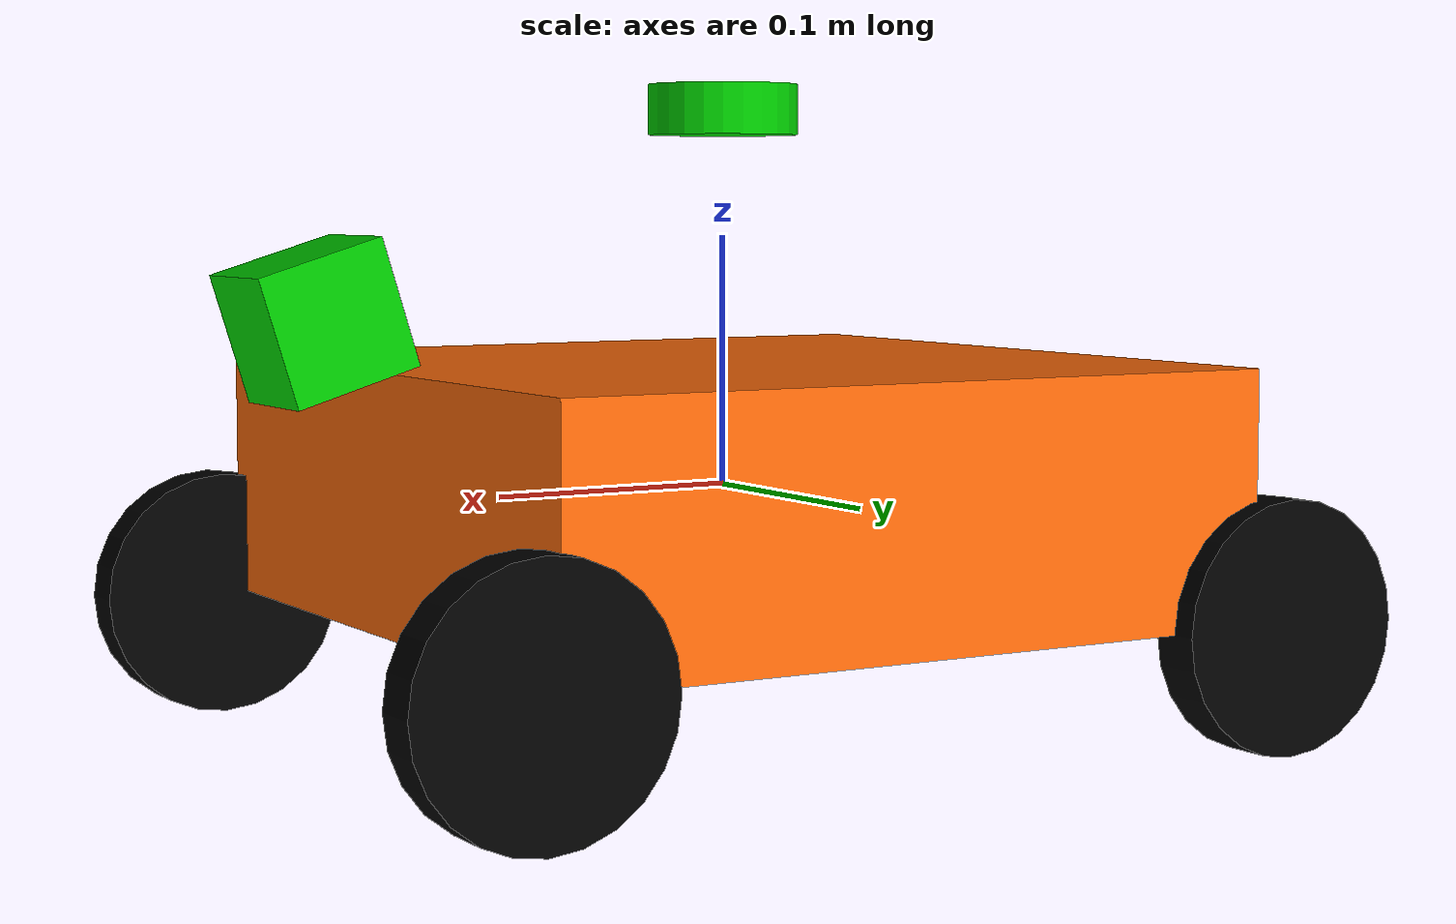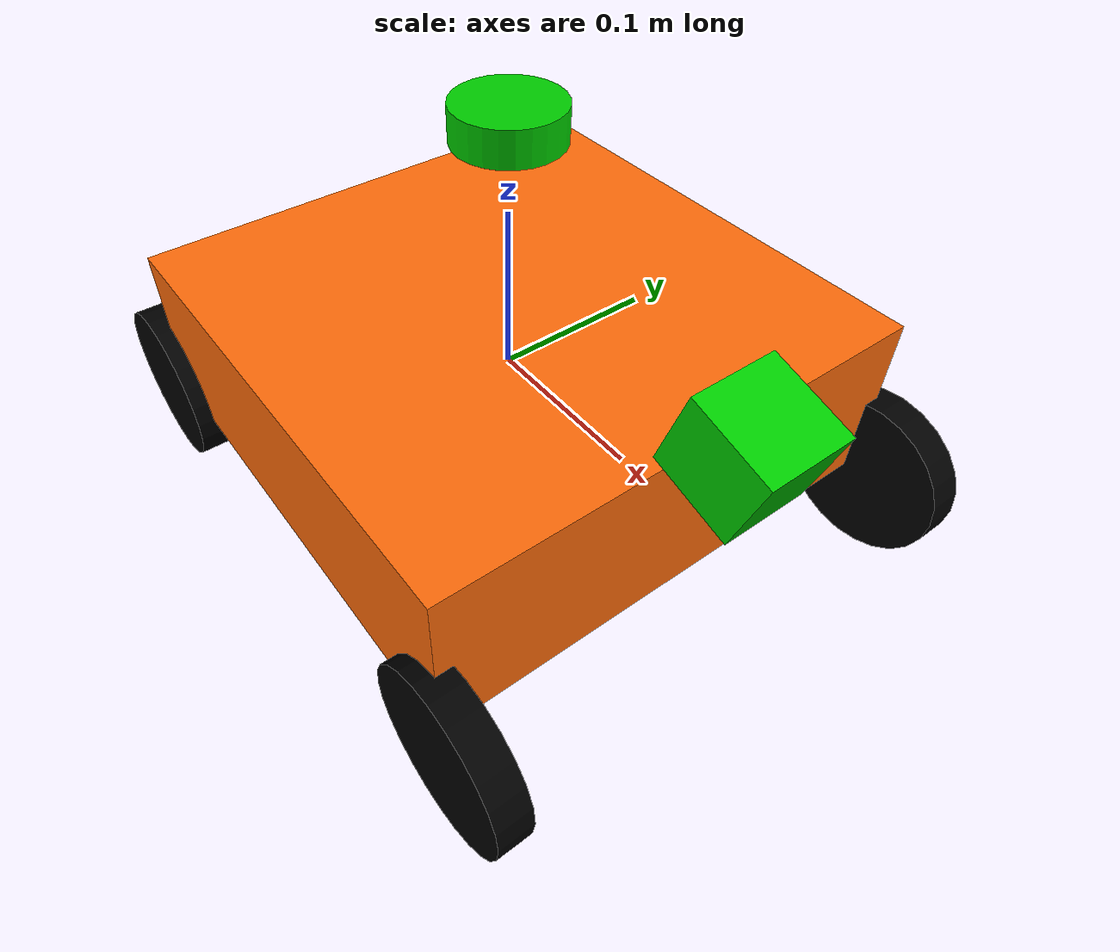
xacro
<?xml version="1.0"?>
<robot name="mars_rover" xmlns:xacro="http://www.ros.org/wiki/xacro">

  <!-- Materials -->
  <material name="black"><color rgba="0.0 0.0 0.0 1.0"/></material>
  <material name="orange"><color rgba="1.0 0.4235 0.0392 1.0"/></material>
  <material name="green"><color rgba="0.0 0.8 0.0 1.0"/></material>

  <!-- Base Link -->
  <link name="base_link">
    <visual>
      <geometry><box size="0.3 0.3 0.1"/></geometry>
      <material name="orange"/>
    </visual>
    <collision>
      <geometry><box size="0.3 0.3 0.1"/></geometry>
    </collision>
    <inertial>
      <mass value="5.0"/>
      <origin xyz="0 0 0"/>
      <inertia ixx="0.1" ixy="0.0" ixz="0.0" iyy="0.1" iyz="0.0" izz="0.1"/>
    </inertial>
  </link>

  <gazebo reference="base_link">
    <material>Gazebo/Orange</material>
  </gazebo>

  <!-- Rear wheel macro (driven) -->
  <xacro:macro name="driven_wheel" params="prefix x y">
    <link name="${prefix}_wheel">
      <visual>
        <geometry><cylinder radius="0.05" length="0.02"/></geometry>
        <material name="black"/>
      </visual>
      <collision>
        <geometry><cylinder radius="0.05" length="0.02"/></geometry>
      </collision>
      <inertial>
        <mass value="0.2"/>
        <origin xyz="0 0 0"/>
        <inertia ixx="0.01" ixy="0.0" ixz="0.0" iyy="0.01" iyz="0.0" izz="0.01"/>
      </inertial>
    </link>

    <gazebo reference="${prefix}_wheel">
      <material>Gazebo/Black</material>
    </gazebo>

    <joint name="${prefix}_wheel_joint" type="continuous">
      <parent link="base_link"/>
      <child link="${prefix}_wheel"/>
      <origin xyz="${x} ${y} -0.05" rpy="1.5707 0 0"/>
      <axis xyz="0 0 -1"/>
      <dynamics damping="0.01" friction="0.0"/>
    </joint>
  </xacro:macro>

  <!-- Front wheel macro (dummy fixed) -->
  <xacro:macro name="dummy_wheel" params="prefix x y">
    <link name="${prefix}_wheel">
      <visual>
        <geometry><cylinder radius="0.05" length="0.02"/></geometry>
        <material name="black"/>
      </visual>
      <collision>
        <geometry><cylinder radius="0.05" length="0.02"/></geometry>
      </collision>
      <inertial>
        <mass value="0.2"/>
        <origin xyz="0 0 0"/>
        <inertia ixx="0.01" ixy="0.0" ixz="0.0" iyy="0.01" iyz="0.0" izz="0.01"/>
      </inertial>
    </link>

    <gazebo reference="${prefix}_wheel">
      <material>Gazebo/Black</material>
      <mu1>0.0</mu1>  <!-- Lateral friction -->
      <mu2>0.0</mu2>  <!-- Longitudinal friction -->
    </gazebo>

    <joint name="${prefix}_wheel_joint" type="fixed">
      <parent link="base_link"/>
      <child link="${prefix}_wheel"/>
      <origin xyz="${x} ${y} -0.05" rpy="1.5707 0 0"/>
    </joint>
  </xacro:macro>

  <!-- Front wheels (fixed) -->
  <xacro:dummy_wheel prefix="front_left" x="0.16" y="0.15"/>
  <xacro:dummy_wheel prefix="front_right" x="0.16" y="-0.15"/>

  <!-- Rear wheels (driven) -->
  <xacro:driven_wheel prefix="rear_left" x="-0.16" y="0.15"/>
  <xacro:driven_wheel prefix="rear_right" x="-0.16" y="-0.15"/>

  <!-- Gazebo Diff Drive Plugin -->
  <gazebo>
    <plugin name="diff_drive" filename="libgazebo_ros_diff_drive.so">
      <left_joint>rear_left_wheel_joint</left_joint>
      <right_joint>rear_right_wheel_joint</right_joint>

      <wheel_separation>0.32</wheel_separation>
      <wheel_diameter>0.1</wheel_diameter>

      <max_wheel_torque>200</max_wheel_torque>
      <max_wheel_acceleration>10.0</max_wheel_acceleration>

      <odometry_frame>odom</odometry_frame>
      <robot_base_frame>base_link</robot_base_frame>

      <publish_odom>true</publish_odom>
      <publish_odom_tf>true</publish_odom_tf>
      <publish_wheel_tf>true</publish_wheel_tf>
    </plugin>
  </gazebo>

  <!-- Camera -->
  <link name="camera_link">
    <visual>
      <geometry><box size="0.05 0.05 0.05"/></geometry>
      <material name="green"/>
    </visual>
    <collision>
      <geometry><box size="0.05 0.05 0.05"/></geometry>
    </collision>
    <inertial>
      <mass value="0.1"/>
      <origin xyz="0 0 0"/>
      <inertia ixx="0.001" ixy="0.0" ixz="0.0" iyy="0.001" iyz="0.0" izz="0.001"/>
    </inertial>
  </link>

  <joint name="camera_joint" type="fixed">
    <parent link="base_link"/>
    <child link="camera_link"/>
    <origin xyz="0.175 0 0.07" rpy="0 0.3 0"/>
  </joint>

  <gazebo reference="camera_link">
    <material>Gazebo/Green</material>
    <sensor name="camera" type="camera">
      <pose>0 0 0 0 0 0</pose>
      <always_on>true</always_on>
      <update_rate>30.0</update_rate>
      <camera>
        <horizontal_fov>1.3962634</horizontal_fov>
        <image>
          <width>640</width>
          <height>480</height>
          <format>R8G8B8</format>
        </image>
        <clip>
          <near>0.1</near>
          <far>2</far>
        </clip>
      </camera>
      <plugin name="gazebo_ros_camera" filename="libgazebo_ros_camera.so">
        <cameraName>camera</cameraName>
        <imageTopicName>image_raw</imageTopicName>
        <cameraInfoTopicName>camera_info</cameraInfoTopicName>
        <frameName>camera_link</frameName>
      </plugin>
    </sensor>
  </gazebo>

    <!-- LiDAR -->
  <link name="lidar_link">
    <visual>
      <geometry><cylinder radius="0.03" length="0.02"/></geometry>
      <material name="green"/>
    </visual>
    <collision>
      <geometry><cylinder radius="0.03" length="0.02"/></geometry>
    </collision>
    <inertial>
      <mass value="0.1"/>
      <origin xyz="0 0 0"/>
      <inertia ixx="0.001" ixy="0.0" ixz="0.0" iyy="0.001" iyz="0.0" izz="0.001"/>
    </inertial>
  </link>

  <joint name="lidar_joint" type="fixed">
    <parent link="base_link"/>
    <child link="lidar_link"/>
    <origin xyz="0.0 0 0.15" rpy="0 0 0"/>
  </joint>

  <gazebo reference="lidar_link">
    <sensor name="lidar_sensor" type="ray">
      <pose>0 0 0 0 0 0</pose>
      <visualize>true</visualize>
      <update_rate>10.0</update_rate>
      <ray>
        <scan>
          <horizontal>
            <samples>720</samples>
            <resolution>1</resolution>
            <min_angle>-3.1415</min_angle>
            <max_angle>3.1415</max_angle>
          </horizontal>
        </scan>
        <range>
          <min>0.12</min>
          <max>8.0</max>
          <resolution>0.01</resolution>
        </range>
        <noise>
          <type>gaussian</type>
          <mean>0.0</mean>
          <stddev>0.01</stddev>
        </noise>
      </ray>
<plugin name="gazebo_ros_laser_controller" filename="libgazebo_ros_ray_sensor.so">
  <ros>
    <remapping>scan:=/scan</remapping>
  </ros>
  <frameName>lidar_link</frameName>
  <output_type>sensor_msgs/LaserScan</output_type>  <!-- ✅ This was missing -->
</plugin>

    </sensor>
  </gazebo>

</robot>
